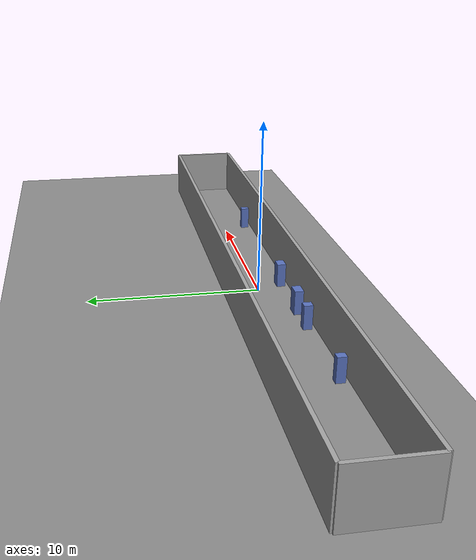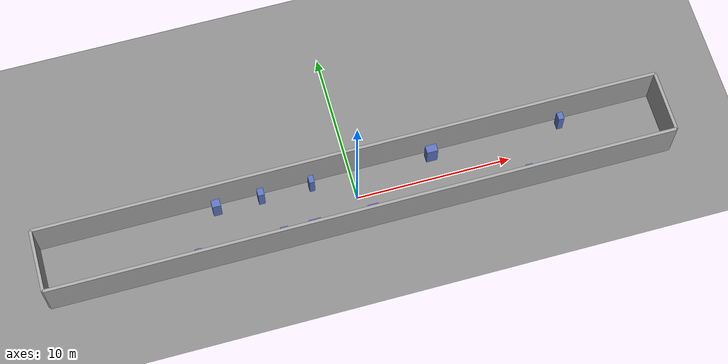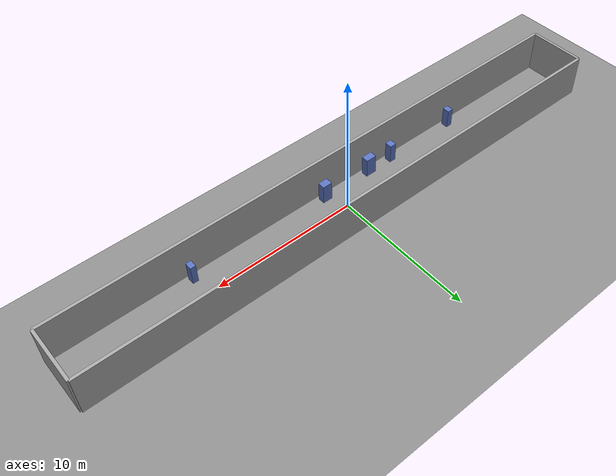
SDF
<?xml version="1.0"?>
<sdf version="1.6">
  <world name="corridor_dark_high_2">
    <physics name="default_physics" type="ode">
      <real_time_update_rate>1000</real_time_update_rate>
      <max_step_size>0.001</max_step_size>
    </physics>
    <scene>
      <ambient>0.01 0.01 0.01 1</ambient>
      <background>0.08 0.09 0.12 1</background>
      <shadows>true</shadows>
    </scene>
    <light name="sun" type="directional">
      <cast_shadows>true</cast_shadows>
      <pose>0 0 20 0 0 0</pose>
      <diffuse>0.04 0.04 0.04 1.0</diffuse>
      <specular>0.04 0.04 0.04 1.0</specular>
      <direction>-0.5 0.2 -1</direction>
    </light>
    <model name="ground_plane">
      <static>true</static>
      <link name="link">
        <collision name="collision"><geometry><plane><normal>0 0 1</normal><size>100 100</size></plane></geometry></collision>
        <visual name="visual">
          <geometry><plane><normal>0 0 1</normal><size>100 100</size></plane></geometry>
          <material><ambient>0.35 0.35 0.35 1</ambient><diffuse>0.55 0.55 0.55 1</diffuse></material>
        </visual>
      </link>
    </model>

    <model name="wall_left">
      <static>true</static>
      <pose>0.0000 2.0000 1.5000 0 0 0</pose>
      <link name="link">
        <collision name="collision"><geometry><box><size>40 0.2 3</size></box></geometry></collision>
        <visual name="visual">
          <geometry><box><size>40 0.2 3</size></box></geometry>
          <material><ambient>0.65 0.65 0.65 1</ambient><diffuse>0.65 0.65 0.65 1</diffuse></material>
        </visual>
      </link>
    </model>

    <model name="wall_right">
      <static>true</static>
      <pose>0.0000 -2.0000 1.5000 0 0 0</pose>
      <link name="link">
        <collision name="collision"><geometry><box><size>40 0.2 3</size></box></geometry></collision>
        <visual name="visual">
          <geometry><box><size>40 0.2 3</size></box></geometry>
          <material><ambient>0.65 0.65 0.65 1</ambient><diffuse>0.65 0.65 0.65 1</diffuse></material>
        </visual>
      </link>
    </model>

    <model name="wall_end">
      <static>true</static>
      <pose>20.0000 0.0000 1.5000 0 0 0</pose>
      <link name="link">
        <collision name="collision"><geometry><box><size>0.2 4 3</size></box></geometry></collision>
        <visual name="visual">
          <geometry><box><size>0.2 4 3</size></box></geometry>
          <material><ambient>0.65 0.65 0.65 1</ambient><diffuse>0.65 0.65 0.65 1</diffuse></material>
        </visual>
      </link>
    </model>

    <model name="wall_start">
      <static>true</static>
      <pose>-20.0000 0.0000 1.5000 0 0 0</pose>
      <link name="link">
        <collision name="collision"><geometry><box><size>0.2 4 3</size></box></geometry></collision>
        <visual name="visual">
          <geometry><box><size>0.2 4 3</size></box></geometry>
          <material><ambient>0.65 0.65 0.65 1</ambient><diffuse>0.65 0.65 0.65 1</diffuse></material>
        </visual>
      </link>
    </model>

    <model name="corridor_feature_0">
      <static>true</static>
      <pose>-3.0928 -1.4500 0.7000 0 0 0</pose>
      <link name="link">
        <collision name="collision"><geometry><box><size>0.7625584802922103 0.5 1.4</size></box></geometry></collision>
        <visual name="visual">
          <geometry><box><size>0.7625584802922103 0.5 1.4</size></box></geometry>
          <material><ambient>0.35 0.45 0.75 1</ambient><diffuse>0.35 0.45 0.75 1</diffuse></material>
        </visual>
      </link>
    </model>

    <model name="corridor_feature_1">
      <static>true</static>
      <pose>-8.7168 1.4500 0.7000 0 0 0</pose>
      <link name="link">
        <collision name="collision"><geometry><box><size>0.5410326483176596 0.5 1.4</size></box></geometry></collision>
        <visual name="visual">
          <geometry><box><size>0.5410326483176596 0.5 1.4</size></box></geometry>
          <material><ambient>0.35 0.45 0.75 1</ambient><diffuse>0.35 0.45 0.75 1</diffuse></material>
        </visual>
      </link>
    </model>

    <model name="corridor_feature_2">
      <static>true</static>
      <pose>-5.0351 -1.4500 0.7000 0 0 0</pose>
      <link name="link">
        <collision name="collision"><geometry><box><size>0.46368568303923163 0.5 1.4</size></box></geometry></collision>
        <visual name="visual">
          <geometry><box><size>0.46368568303923163 0.5 1.4</size></box></geometry>
          <material><ambient>0.35 0.45 0.75 1</ambient><diffuse>0.35 0.45 0.75 1</diffuse></material>
        </visual>
      </link>
    </model>

    <model name="corridor_feature_3">
      <static>true</static>
      <pose>-2.6082 1.4500 0.7000 0 0 0</pose>
      <link name="link">
        <collision name="collision"><geometry><box><size>0.3339353027221676 0.5 1.4</size></box></geometry></collision>
        <visual name="visual">
          <geometry><box><size>0.3339353027221676 0.5 1.4</size></box></geometry>
          <material><ambient>0.35 0.45 0.75 1</ambient><diffuse>0.35 0.45 0.75 1</diffuse></material>
        </visual>
      </link>
    </model>

    <model name="corridor_feature_4">
      <static>true</static>
      <pose>5.2297 1.4500 0.7000 0 0 0</pose>
      <link name="link">
        <collision name="collision"><geometry><box><size>0.712162608774886 0.5 1.4</size></box></geometry></collision>
        <visual name="visual">
          <geometry><box><size>0.712162608774886 0.5 1.4</size></box></geometry>
          <material><ambient>0.35 0.45 0.75 1</ambient><diffuse>0.35 0.45 0.75 1</diffuse></material>
        </visual>
      </link>
    </model>

    <model name="corridor_feature_5">
      <static>true</static>
      <pose>-10.4612 -1.4500 0.7000 0 0 0</pose>
      <link name="link">
        <collision name="collision"><geometry><box><size>0.41380181571098845 0.5 1.4</size></box></geometry></collision>
        <visual name="visual">
          <geometry><box><size>0.41380181571098845 0.5 1.4</size></box></geometry>
          <material><ambient>0.35 0.45 0.75 1</ambient><diffuse>0.35 0.45 0.75 1</diffuse></material>
        </visual>
      </link>
    </model>

    <model name="corridor_feature_6">
      <static>true</static>
      <pose>10.7961 -1.4500 0.7000 0 0 0</pose>
      <link name="link">
        <collision name="collision"><geometry><box><size>0.3852192973188375 0.5 1.4</size></box></geometry></collision>
        <visual name="visual">
          <geometry><box><size>0.3852192973188375 0.5 1.4</size></box></geometry>
          <material><ambient>0.35 0.45 0.75 1</ambient><diffuse>0.35 0.45 0.75 1</diffuse></material>
        </visual>
      </link>
    </model>

    <model name="corridor_feature_7">
      <static>true</static>
      <pose>-5.8636 1.4500 0.7000 0 0 0</pose>
      <link name="link">
        <collision name="collision"><geometry><box><size>0.4027518634625664 0.5 1.4</size></box></geometry></collision>
        <visual name="visual">
          <geometry><box><size>0.4027518634625664 0.5 1.4</size></box></geometry>
          <material><ambient>0.35 0.45 0.75 1</ambient><diffuse>0.35 0.45 0.75 1</diffuse></material>
        </visual>
      </link>
    </model>

    <model name="corridor_feature_8">
      <static>true</static>
      <pose>13.7477 1.4500 0.7000 0 0 0</pose>
      <link name="link">
        <collision name="collision"><geometry><box><size>0.3671544276403888 0.5 1.4</size></box></geometry></collision>
        <visual name="visual">
          <geometry><box><size>0.3671544276403888 0.5 1.4</size></box></geometry>
          <material><ambient>0.35 0.45 0.75 1</ambient><diffuse>0.35 0.45 0.75 1</diffuse></material>
        </visual>
      </link>
    </model>

    <model name="corridor_feature_9">
      <static>true</static>
      <pose>0.6526 -1.4500 0.7000 0 0 0</pose>
      <link name="link">
        <collision name="collision"><geometry><box><size>0.6871890565169854 0.5 1.4</size></box></geometry></collision>
        <visual name="visual">
          <geometry><box><size>0.6871890565169854 0.5 1.4</size></box></geometry>
          <material><ambient>0.35 0.45 0.75 1</ambient><diffuse>0.35 0.45 0.75 1</diffuse></material>
        </visual>
      </link>
    </model>
  </world>
</sdf>
